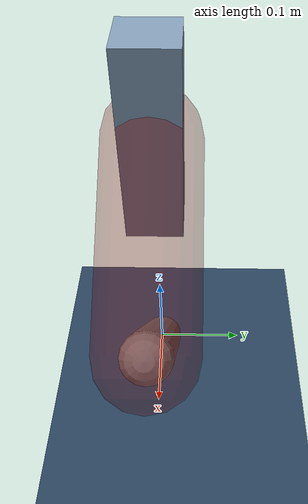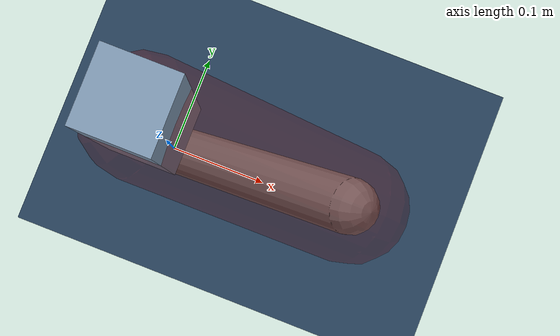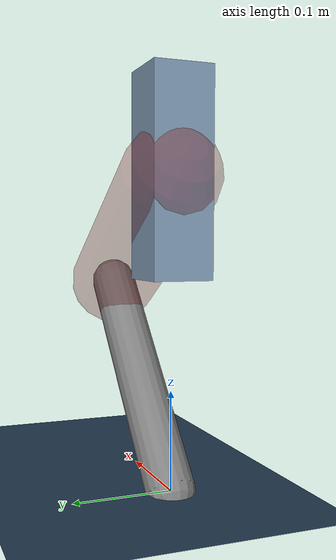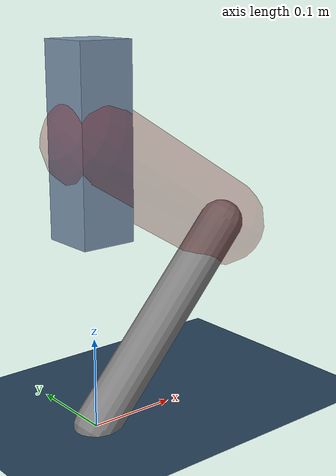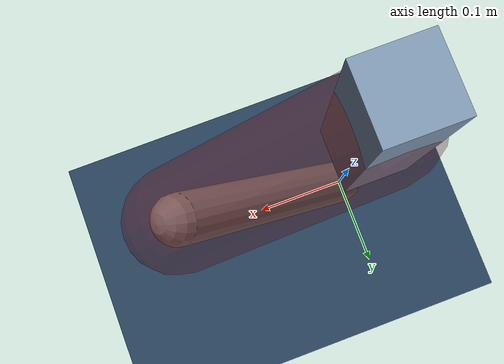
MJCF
<mujoco model="Hopper2D">
	<compiler inertiafromgeom="true" angle="radian" />
	<option timestep="0.001" integrator="implicit" cone="elliptic" solver="Newton" tolerance="1e-10" />

	<default>
		<geom contype="1" conaffinity="1" condim="3" friction="2 0.005 0.0001" solref="0.005 1" />
		<joint limited="true" damping="0.1" />
	</default>

	<asset>
		<texture name="skybox" type="skybox" builtin="gradient" rgb1=".4 .6 .8" rgb2="0 0 0" width="800" height="800" />
		<texture name="grid" type="2d" builtin="checker" rgb1=".1 .2 .3" rgb2=".2 .3 .4" width="300" height="300" mark="edge" markrgb=".2 .3 .4" />
		<material name="ground" texture="grid" texrepeat="1 1" texuniform="true" reflectance="0.1" />
		<material name="leg" rgba="0.5 0.6 0.7 1" />
	</asset>

	<worldbody>

		<geom name="floor" type="plane" size="5 5 0.25" material="ground" />

		<light directional="false" diffuse="0.8 0.8 0.8" specular="0.3 0.3 0.3" pos="0 0 2" dir="0 0 -1" />
		<light mode="targetbodycom" target="base" directional="false" diffuse="0.8 0.8 0.8" specular="0.3 0.3 0.3" pos="0 0 2" dir="0 0 -1" />

		<camera name="fixed" pos="0 -2 1" xyaxes="1 0 0 0 0 1" />
		<camera name="tracking" mode="trackcom" pos="0 -3 1" />

		<body name="root" pos="0 0 0.30897833771323835">
			<joint name="slide_x" type="slide" axis="1 0 0" range="-100 100" />
			<joint name="slide_z" type="slide" axis="0 0 1" range="0 10" />

			<body name="base" pos="0 0 0">
				<geom name="torso" type="box" size="0.03 0.03 0.1" mass="1.7690000000000001" material="leg" />

				<body name="link1" pos="0 0 0" euler="0 0.5482160617610292 0">
					<joint type="hinge" axis="0 -1 0" pos="0 0 0" name="hinge1" limited="true" range="-3.14 3.14" stiffness="0" damping="0.1" />
					<geom name="thigh" type="capsule" fromto="0 0 0 0.20926466716733194 0 0" size="0.05" rgba="0.5 0 0 0.3" mass="0.7526616679183299" />

					<body name="link2" pos="0.20926466716733194 0 0" euler="0 1.7517159145318895 0">
						<joint type="hinge" axis="0 -1 0" pos="0 0 0" name="hinge2" limited="true" range="-3.14 3.14" stiffness="0" damping="0.1" />
						<geom name="shank" type="capsule" fromto="0 0 0 0.26807463641556833 0 0" size="0.025" mass="0.45735970913245466" />

					</body>
				</body>
			</body>
		</body>
	</worldbody>

	<actuator>
		<motor name="torque1" joint="hinge1" ctrlrange="-23.72814723222048 23.72814723222048" ctrllimited="true" gear="1" />
		<motor name="torque2" joint="hinge2" ctrlrange="-69.19282318702153 69.19282318702153" ctrllimited="true" gear="1" />
	</actuator>
</mujoco>
